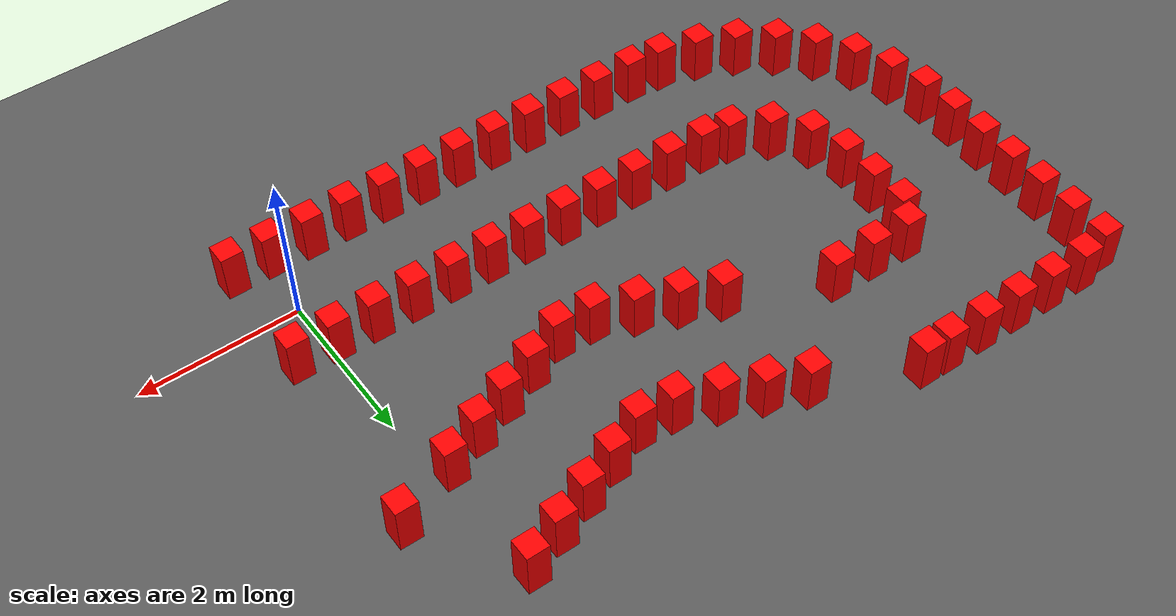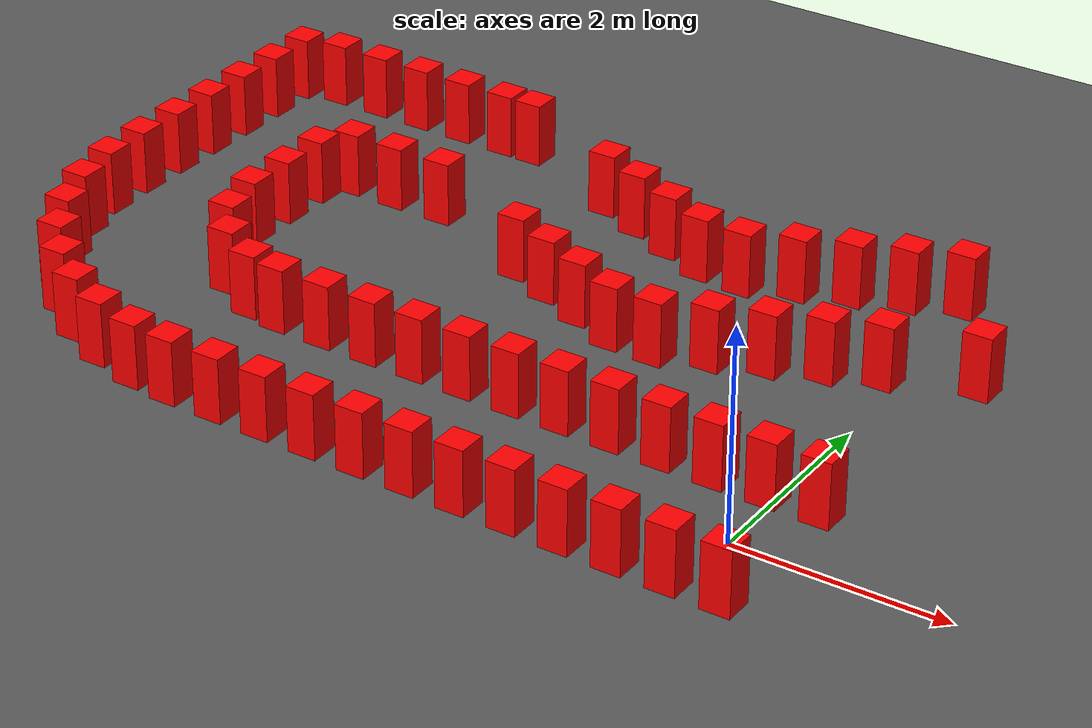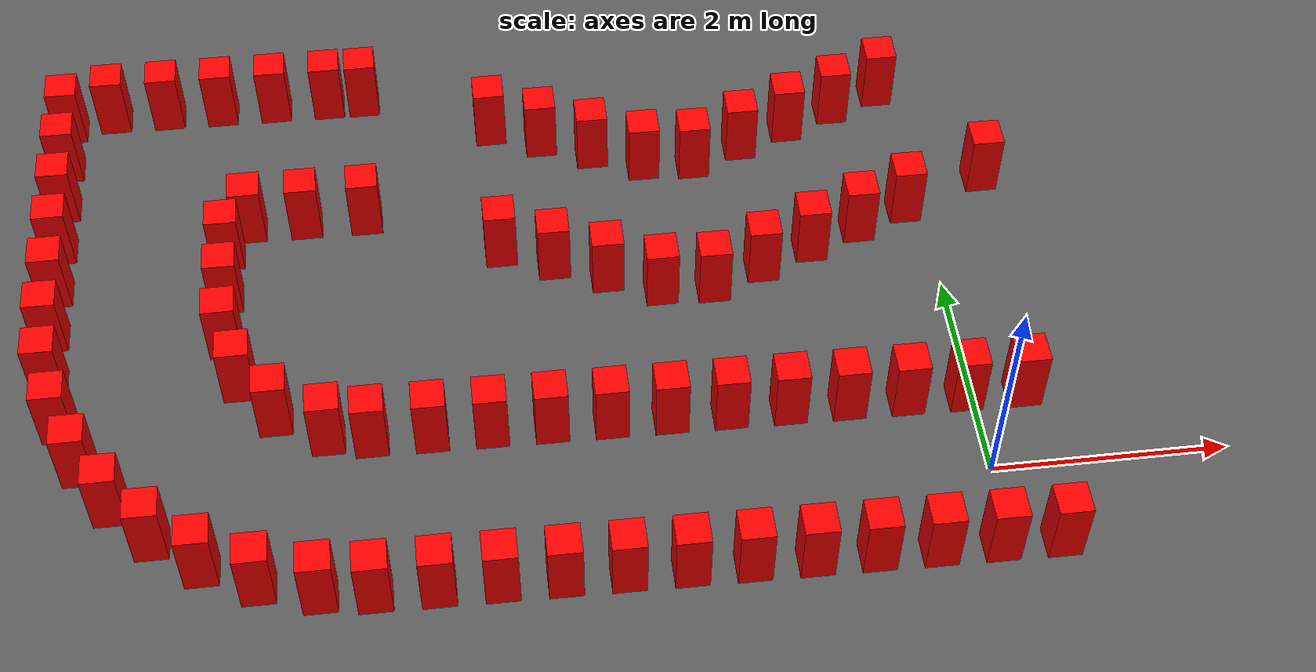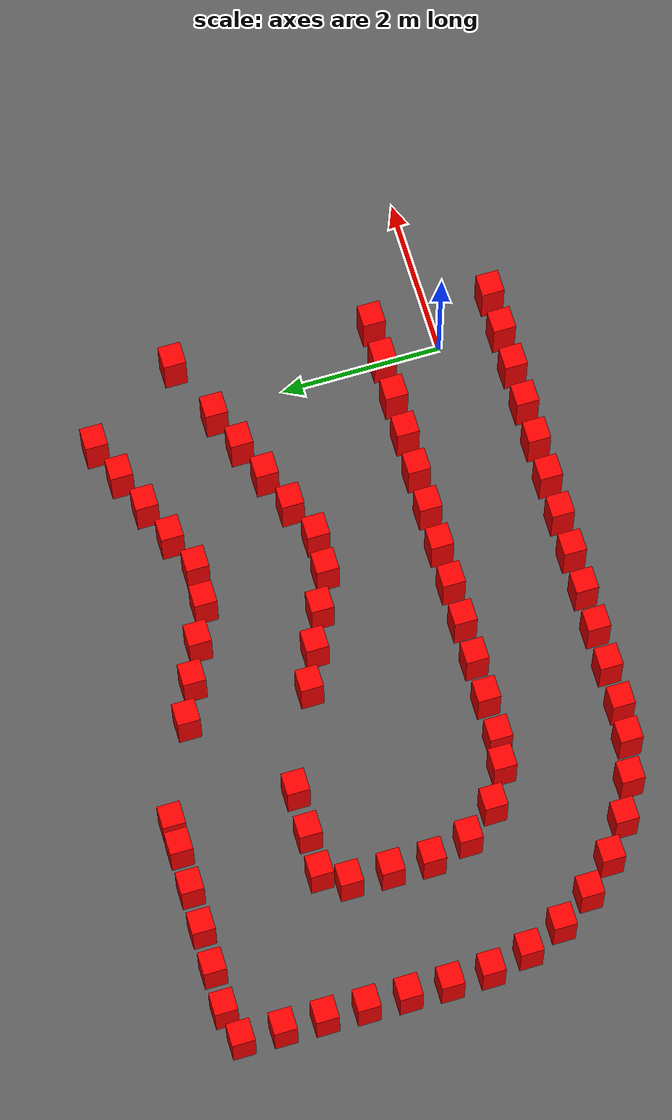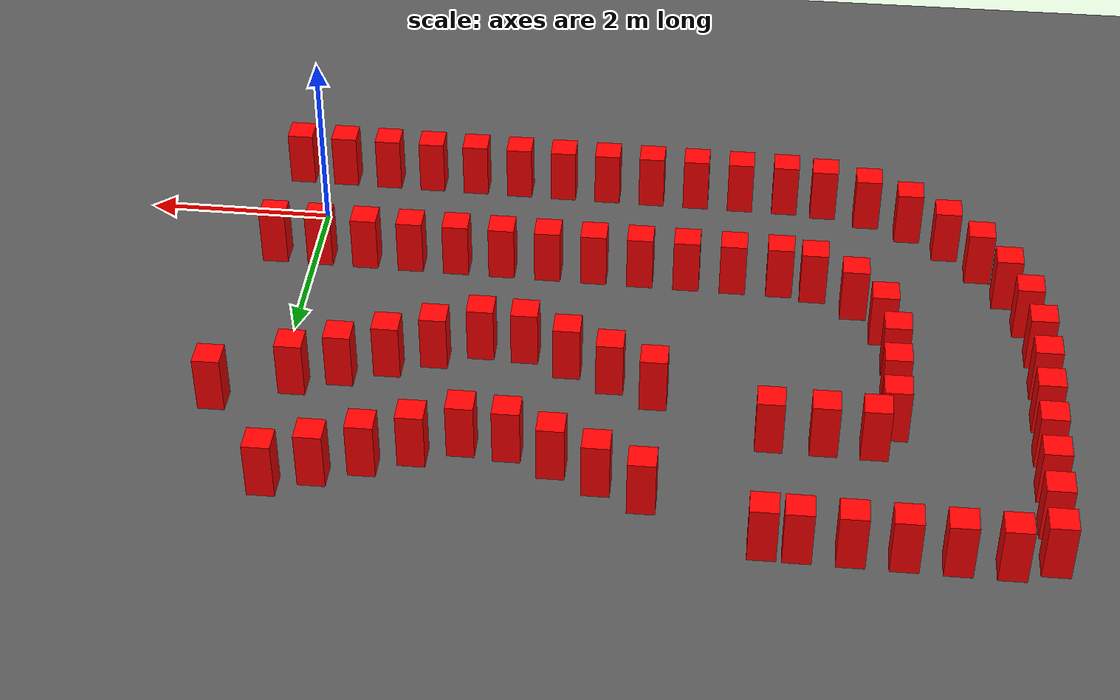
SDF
<sdf version="1.6">
 <world name="prototype">
  <model name="ground">
   <static>true</static>
   <pose>0 0 -0.05 0 0 0</pose>
   <link name="body">
    <visual name="visual">
     <geometry><box><size>200 200 0.1</size></box></geometry>
     <material><ambient>.35 .35 .35 1</ambient><diffuse>.35 .35 .35 1</diffuse></material>
    </visual>
    <collision name="collision"><geometry><box><size>200 200 0.1</size></box></geometry></collision>
   </link>
  </model>
  <model name="cone_proxy_c0">
   <static>true</static>
   <pose>-5.1238 -0.6649 0.315 0 0 0</pose>
   <link name="body">
    <visual name="visual">
     <geometry><box><size>.28 .28 .63</size></box></geometry>
     <material><ambient>1 0 0 1</ambient><diffuse>1 0 0 1</diffuse></material>
    </visual>
    <collision name="collision"><geometry><box><size>.28 .28 .63</size></box></geometry></collision>
   </link>
  </model>
  <model name="cone_proxy_c1">
   <static>true</static>
   <pose>-4.6214 -0.6739 0.315 0 0 0</pose>
   <link name="body">
    <visual name="visual">
     <geometry><box><size>.28 .28 .63</size></box></geometry>
     <material><ambient>1 0 0 1</ambient><diffuse>1 0 0 1</diffuse></material>
    </visual>
    <collision name="collision"><geometry><box><size>.28 .28 .63</size></box></geometry></collision>
   </link>
  </model>
  <model name="cone_proxy_c2">
   <static>true</static>
   <pose>-4.1189 -0.6830 0.315 0 0 0</pose>
   <link name="body">
    <visual name="visual">
     <geometry><box><size>.28 .28 .63</size></box></geometry>
     <material><ambient>1 0 0 1</ambient><diffuse>1 0 0 1</diffuse></material>
    </visual>
    <collision name="collision"><geometry><box><size>.28 .28 .63</size></box></geometry></collision>
   </link>
  </model>
  <model name="cone_proxy_c3">
   <static>true</static>
   <pose>-3.6165 -0.6920 0.315 0 0 0</pose>
   <link name="body">
    <visual name="visual">
     <geometry><box><size>.28 .28 .63</size></box></geometry>
     <material><ambient>1 0 0 1</ambient><diffuse>1 0 0 1</diffuse></material>
    </visual>
    <collision name="collision"><geometry><box><size>.28 .28 .63</size></box></geometry></collision>
   </link>
  </model>
  <model name="cone_proxy_c4">
   <static>true</static>
   <pose>-3.1141 -0.7011 0.315 0 0 0</pose>
   <link name="body">
    <visual name="visual">
     <geometry><box><size>.28 .28 .63</size></box></geometry>
     <material><ambient>1 0 0 1</ambient><diffuse>1 0 0 1</diffuse></material>
    </visual>
    <collision name="collision"><geometry><box><size>.28 .28 .63</size></box></geometry></collision>
   </link>
  </model>
  <model name="cone_proxy_c5">
   <static>true</static>
   <pose>-2.6118 -0.7101 0.315 0 0 0</pose>
   <link name="body">
    <visual name="visual">
     <geometry><box><size>.28 .28 .63</size></box></geometry>
     <material><ambient>1 0 0 1</ambient><diffuse>1 0 0 1</diffuse></material>
    </visual>
    <collision name="collision"><geometry><box><size>.28 .28 .63</size></box></geometry></collision>
   </link>
  </model>
  <model name="cone_proxy_c6">
   <static>true</static>
   <pose>-2.1094 -0.7192 0.315 0 0 0</pose>
   <link name="body">
    <visual name="visual">
     <geometry><box><size>.28 .28 .63</size></box></geometry>
     <material><ambient>1 0 0 1</ambient><diffuse>1 0 0 1</diffuse></material>
    </visual>
    <collision name="collision"><geometry><box><size>.28 .28 .63</size></box></geometry></collision>
   </link>
  </model>
  <model name="cone_proxy_c7">
   <static>true</static>
   <pose>-1.6069 -0.7282 0.315 0 0 0</pose>
   <link name="body">
    <visual name="visual">
     <geometry><box><size>.28 .28 .63</size></box></geometry>
     <material><ambient>1 0 0 1</ambient><diffuse>1 0 0 1</diffuse></material>
    </visual>
    <collision name="collision"><geometry><box><size>.28 .28 .63</size></box></geometry></collision>
   </link>
  </model>
  <model name="cone_proxy_c8">
   <static>true</static>
   <pose>-1.1045 -0.7373 0.315 0 0 0</pose>
   <link name="body">
    <visual name="visual">
     <geometry><box><size>.28 .28 .63</size></box></geometry>
     <material><ambient>1 0 0 1</ambient><diffuse>1 0 0 1</diffuse></material>
    </visual>
    <collision name="collision"><geometry><box><size>.28 .28 .63</size></box></geometry></collision>
   </link>
  </model>
  <model name="cone_proxy_c9">
   <static>true</static>
   <pose>-0.6021 -0.7463 0.315 0 0 0</pose>
   <link name="body">
    <visual name="visual">
     <geometry><box><size>.28 .28 .63</size></box></geometry>
     <material><ambient>1 0 0 1</ambient><diffuse>1 0 0 1</diffuse></material>
    </visual>
    <collision name="collision"><geometry><box><size>.28 .28 .63</size></box></geometry></collision>
   </link>
  </model>
  <model name="cone_proxy_c10">
   <static>true</static>
   <pose>-0.0998 -0.7554 0.315 0 0 0</pose>
   <link name="body">
    <visual name="visual">
     <geometry><box><size>.28 .28 .63</size></box></geometry>
     <material><ambient>1 0 0 1</ambient><diffuse>1 0 0 1</diffuse></material>
    </visual>
    <collision name="collision"><geometry><box><size>.28 .28 .63</size></box></geometry></collision>
   </link>
  </model>
  <model name="cone_proxy_c11">
   <static>true</static>
   <pose>0.4026 -0.7644 0.315 0 0 0</pose>
   <link name="body">
    <visual name="visual">
     <geometry><box><size>.28 .28 .63</size></box></geometry>
     <material><ambient>1 0 0 1</ambient><diffuse>1 0 0 1</diffuse></material>
    </visual>
    <collision name="collision"><geometry><box><size>.28 .28 .63</size></box></geometry></collision>
   </link>
  </model>
  <model name="cone_proxy_c53">
   <static>true</static>
   <pose>-5.0248 4.8301 0.315 0 0 0</pose>
   <link name="body">
    <visual name="visual">
     <geometry><box><size>.28 .28 .63</size></box></geometry>
     <material><ambient>1 0 0 1</ambient><diffuse>1 0 0 1</diffuse></material>
    </visual>
    <collision name="collision"><geometry><box><size>.28 .28 .63</size></box></geometry></collision>
   </link>
  </model>
  <model name="cone_proxy_c54">
   <static>true</static>
   <pose>-5.3560 4.8361 0.315 0 0 0</pose>
   <link name="body">
    <visual name="visual">
     <geometry><box><size>.28 .28 .63</size></box></geometry>
     <material><ambient>1 0 0 1</ambient><diffuse>1 0 0 1</diffuse></material>
    </visual>
    <collision name="collision"><geometry><box><size>.28 .28 .63</size></box></geometry></collision>
   </link>
  </model>
  <model name="cone_proxy_c55">
   <static>true</static>
   <pose>-5.8584 4.8452 0.315 0 0 0</pose>
   <link name="body">
    <visual name="visual">
     <geometry><box><size>.28 .28 .63</size></box></geometry>
     <material><ambient>1 0 0 1</ambient><diffuse>1 0 0 1</diffuse></material>
    </visual>
    <collision name="collision"><geometry><box><size>.28 .28 .63</size></box></geometry></collision>
   </link>
  </model>
  <model name="cone_proxy_c56">
   <static>true</static>
   <pose>-6.3608 4.8542 0.315 0 0 0</pose>
   <link name="body">
    <visual name="visual">
     <geometry><box><size>.28 .28 .63</size></box></geometry>
     <material><ambient>1 0 0 1</ambient><diffuse>1 0 0 1</diffuse></material>
    </visual>
    <collision name="collision"><geometry><box><size>.28 .28 .63</size></box></geometry></collision>
   </link>
  </model>
  <model name="cone_proxy_c57">
   <static>true</static>
   <pose>-6.8633 4.8633 0.315 0 0 0</pose>
   <link name="body">
    <visual name="visual">
     <geometry><box><size>.28 .28 .63</size></box></geometry>
     <material><ambient>1 0 0 1</ambient><diffuse>1 0 0 1</diffuse></material>
    </visual>
    <collision name="collision"><geometry><box><size>.28 .28 .63</size></box></geometry></collision>
   </link>
  </model>
  <model name="cone_proxy_c58">
   <static>true</static>
   <pose>-7.3657 4.8723 0.315 0 0 0</pose>
   <link name="body">
    <visual name="visual">
     <geometry><box><size>.28 .28 .63</size></box></geometry>
     <material><ambient>1 0 0 1</ambient><diffuse>1 0 0 1</diffuse></material>
    </visual>
    <collision name="collision"><geometry><box><size>.28 .28 .63</size></box></geometry></collision>
   </link>
  </model>
  <model name="cone_proxy_c59">
   <static>true</static>
   <pose>-7.7739 4.7838 0.315 0 0 0</pose>
   <link name="body">
    <visual name="visual">
     <geometry><box><size>.28 .28 .63</size></box></geometry>
     <material><ambient>1 0 0 1</ambient><diffuse>1 0 0 1</diffuse></material>
    </visual>
    <collision name="collision"><geometry><box><size>.28 .28 .63</size></box></geometry></collision>
   </link>
  </model>
  <model name="cone_proxy_c60">
   <static>true</static>
   <pose>-7.7830 4.2815 0.315 0 0 0</pose>
   <link name="body">
    <visual name="visual">
     <geometry><box><size>.28 .28 .63</size></box></geometry>
     <material><ambient>1 0 0 1</ambient><diffuse>1 0 0 1</diffuse></material>
    </visual>
    <collision name="collision"><geometry><box><size>.28 .28 .63</size></box></geometry></collision>
   </link>
  </model>
  <model name="cone_proxy_c61">
   <static>true</static>
   <pose>-7.7921 3.7790 0.315 0 0 0</pose>
   <link name="body">
    <visual name="visual">
     <geometry><box><size>.28 .28 .63</size></box></geometry>
     <material><ambient>1 0 0 1</ambient><diffuse>1 0 0 1</diffuse></material>
    </visual>
    <collision name="collision"><geometry><box><size>.28 .28 .63</size></box></geometry></collision>
   </link>
  </model>
  <model name="cone_proxy_c62">
   <static>true</static>
   <pose>-7.8011 3.2766 0.315 0 0 0</pose>
   <link name="body">
    <visual name="visual">
     <geometry><box><size>.28 .28 .63</size></box></geometry>
     <material><ambient>1 0 0 1</ambient><diffuse>1 0 0 1</diffuse></material>
    </visual>
    <collision name="collision"><geometry><box><size>.28 .28 .63</size></box></geometry></collision>
   </link>
  </model>
  <model name="cone_proxy_c63">
   <static>true</static>
   <pose>-7.8102 2.7742 0.315 0 0 0</pose>
   <link name="body">
    <visual name="visual">
     <geometry><box><size>.28 .28 .63</size></box></geometry>
     <material><ambient>1 0 0 1</ambient><diffuse>1 0 0 1</diffuse></material>
    </visual>
    <collision name="collision"><geometry><box><size>.28 .28 .63</size></box></geometry></collision>
   </link>
  </model>
  <model name="cone_proxy_c64">
   <static>true</static>
   <pose>-7.8192 2.2718 0.315 0 0 0</pose>
   <link name="body">
    <visual name="visual">
     <geometry><box><size>.28 .28 .63</size></box></geometry>
     <material><ambient>1 0 0 1</ambient><diffuse>1 0 0 1</diffuse></material>
    </visual>
    <collision name="collision"><geometry><box><size>.28 .28 .63</size></box></geometry></collision>
   </link>
  </model>
  <model name="cone_proxy_c65">
   <static>true</static>
   <pose>-7.8040 1.7700 0.315 0 0 0</pose>
   <link name="body">
    <visual name="visual">
     <geometry><box><size>.28 .28 .63</size></box></geometry>
     <material><ambient>1 0 0 1</ambient><diffuse>1 0 0 1</diffuse></material>
    </visual>
    <collision name="collision"><geometry><box><size>.28 .28 .63</size></box></geometry></collision>
   </link>
  </model>
  <model name="cone_proxy_c66">
   <static>true</static>
   <pose>-7.7020 1.2788 0.315 0 0 0</pose>
   <link name="body">
    <visual name="visual">
     <geometry><box><size>.28 .28 .63</size></box></geometry>
     <material><ambient>1 0 0 1</ambient><diffuse>1 0 0 1</diffuse></material>
    </visual>
    <collision name="collision"><geometry><box><size>.28 .28 .63</size></box></geometry></collision>
   </link>
  </model>
  <model name="cone_proxy_c67">
   <static>true</static>
   <pose>-7.5117 0.8145 0.315 0 0 0</pose>
   <link name="body">
    <visual name="visual">
     <geometry><box><size>.28 .28 .63</size></box></geometry>
     <material><ambient>1 0 0 1</ambient><diffuse>1 0 0 1</diffuse></material>
    </visual>
    <collision name="collision"><geometry><box><size>.28 .28 .63</size></box></geometry></collision>
   </link>
  </model>
  <model name="cone_proxy_c68">
   <static>true</static>
   <pose>-7.2404 0.3924 0.315 0 0 0</pose>
   <link name="body">
    <visual name="visual">
     <geometry><box><size>.28 .28 .63</size></box></geometry>
     <material><ambient>1 0 0 1</ambient><diffuse>1 0 0 1</diffuse></material>
    </visual>
    <collision name="collision"><geometry><box><size>.28 .28 .63</size></box></geometry></collision>
   </link>
  </model>
  <model name="cone_proxy_c69">
   <static>true</static>
   <pose>-6.8969 0.0266 0.315 0 0 0</pose>
   <link name="body">
    <visual name="visual">
     <geometry><box><size>.28 .28 .63</size></box></geometry>
     <material><ambient>1 0 0 1</ambient><diffuse>1 0 0 1</diffuse></material>
    </visual>
    <collision name="collision"><geometry><box><size>.28 .28 .63</size></box></geometry></collision>
   </link>
  </model>
  <model name="cone_proxy_c70">
   <static>true</static>
   <pose>-6.4928 -0.2708 0.315 0 0 0</pose>
   <link name="body">
    <visual name="visual">
     <geometry><box><size>.28 .28 .63</size></box></geometry>
     <material><ambient>1 0 0 1</ambient><diffuse>1 0 0 1</diffuse></material>
    </visual>
    <collision name="collision"><geometry><box><size>.28 .28 .63</size></box></geometry></collision>
   </link>
  </model>
  <model name="cone_proxy_c71">
   <static>true</static>
   <pose>-6.0411 -0.4893 0.315 0 0 0</pose>
   <link name="body">
    <visual name="visual">
     <geometry><box><size>.28 .28 .63</size></box></geometry>
     <material><ambient>1 0 0 1</ambient><diffuse>1 0 0 1</diffuse></material>
    </visual>
    <collision name="collision"><geometry><box><size>.28 .28 .63</size></box></geometry></collision>
   </link>
  </model>
  <model name="cone_proxy_c72">
   <static>true</static>
   <pose>-5.5573 -0.6221 0.315 0 0 0</pose>
   <link name="body">
    <visual name="visual">
     <geometry><box><size>.28 .28 .63</size></box></geometry>
     <material><ambient>1 0 0 1</ambient><diffuse>1 0 0 1</diffuse></material>
    </visual>
    <collision name="collision"><geometry><box><size>.28 .28 .63</size></box></geometry></collision>
   </link>
  </model>
  <model name="cone_proxy_c73">
   <static>true</static>
   <pose>-5.0966 0.8423 0.315 0 0 0</pose>
   <link name="body">
    <visual name="visual">
     <geometry><box><size>.28 .28 .63</size></box></geometry>
     <material><ambient>1 0 0 1</ambient><diffuse>1 0 0 1</diffuse></material>
    </visual>
    <collision name="collision"><geometry><box><size>.28 .28 .63</size></box></geometry></collision>
   </link>
  </model>
  <model name="cone_proxy_c74">
   <static>true</static>
   <pose>-4.5942 0.8332 0.315 0 0 0</pose>
   <link name="body">
    <visual name="visual">
     <geometry><box><size>.28 .28 .63</size></box></geometry>
     <material><ambient>1 0 0 1</ambient><diffuse>1 0 0 1</diffuse></material>
    </visual>
    <collision name="collision"><geometry><box><size>.28 .28 .63</size></box></geometry></collision>
   </link>
  </model>
  <model name="cone_proxy_c75">
   <static>true</static>
   <pose>-4.0918 0.8242 0.315 0 0 0</pose>
   <link name="body">
    <visual name="visual">
     <geometry><box><size>.28 .28 .63</size></box></geometry>
     <material><ambient>1 0 0 1</ambient><diffuse>1 0 0 1</diffuse></material>
    </visual>
    <collision name="collision"><geometry><box><size>.28 .28 .63</size></box></geometry></collision>
   </link>
  </model>
  <model name="cone_proxy_c76">
   <static>true</static>
   <pose>-3.5894 0.8151 0.315 0 0 0</pose>
   <link name="body">
    <visual name="visual">
     <geometry><box><size>.28 .28 .63</size></box></geometry>
     <material><ambient>1 0 0 1</ambient><diffuse>1 0 0 1</diffuse></material>
    </visual>
    <collision name="collision"><geometry><box><size>.28 .28 .63</size></box></geometry></collision>
   </link>
  </model>
  <model name="cone_proxy_c77">
   <static>true</static>
   <pose>-3.0869 0.8061 0.315 0 0 0</pose>
   <link name="body">
    <visual name="visual">
     <geometry><box><size>.28 .28 .63</size></box></geometry>
     <material><ambient>1 0 0 1</ambient><diffuse>1 0 0 1</diffuse></material>
    </visual>
    <collision name="collision"><geometry><box><size>.28 .28 .63</size></box></geometry></collision>
   </link>
  </model>
  <model name="cone_proxy_c78">
   <static>true</static>
   <pose>-2.5846 0.7970 0.315 0 0 0</pose>
   <link name="body">
    <visual name="visual">
     <geometry><box><size>.28 .28 .63</size></box></geometry>
     <material><ambient>1 0 0 1</ambient><diffuse>1 0 0 1</diffuse></material>
    </visual>
    <collision name="collision"><geometry><box><size>.28 .28 .63</size></box></geometry></collision>
   </link>
  </model>
  <model name="cone_proxy_c79">
   <static>true</static>
   <pose>-2.0822 0.7880 0.315 0 0 0</pose>
   <link name="body">
    <visual name="visual">
     <geometry><box><size>.28 .28 .63</size></box></geometry>
     <material><ambient>1 0 0 1</ambient><diffuse>1 0 0 1</diffuse></material>
    </visual>
    <collision name="collision"><geometry><box><size>.28 .28 .63</size></box></geometry></collision>
   </link>
  </model>
  <model name="cone_proxy_c80">
   <static>true</static>
   <pose>-1.5798 0.7789 0.315 0 0 0</pose>
   <link name="body">
    <visual name="visual">
     <geometry><box><size>.28 .28 .63</size></box></geometry>
     <material><ambient>1 0 0 1</ambient><diffuse>1 0 0 1</diffuse></material>
    </visual>
    <collision name="collision"><geometry><box><size>.28 .28 .63</size></box></geometry></collision>
   </link>
  </model>
  <model name="cone_proxy_c81">
   <static>true</static>
   <pose>-1.0774 0.7699 0.315 0 0 0</pose>
   <link name="body">
    <visual name="visual">
     <geometry><box><size>.28 .28 .63</size></box></geometry>
     <material><ambient>1 0 0 1</ambient><diffuse>1 0 0 1</diffuse></material>
    </visual>
    <collision name="collision"><geometry><box><size>.28 .28 .63</size></box></geometry></collision>
   </link>
  </model>
  <model name="cone_proxy_c82">
   <static>true</static>
   <pose>-0.5750 0.7608 0.315 0 0 0</pose>
   <link name="body">
    <visual name="visual">
     <geometry><box><size>.28 .28 .63</size></box></geometry>
     <material><ambient>1 0 0 1</ambient><diffuse>1 0 0 1</diffuse></material>
    </visual>
    <collision name="collision"><geometry><box><size>.28 .28 .63</size></box></geometry></collision>
   </link>
  </model>
  <model name="cone_proxy_c83">
   <static>true</static>
   <pose>-0.0726 0.7518 0.315 0 0 0</pose>
   <link name="body">
    <visual name="visual">
     <geometry><box><size>.28 .28 .63</size></box></geometry>
     <material><ambient>1 0 0 1</ambient><diffuse>1 0 0 1</diffuse></material>
    </visual>
    <collision name="collision"><geometry><box><size>.28 .28 .63</size></box></geometry></collision>
   </link>
  </model>
  <model name="cone_proxy_c84">
   <static>true</static>
   <pose>0.4298 0.7427 0.315 0 0 0</pose>
   <link name="body">
    <visual name="visual">
     <geometry><box><size>.28 .28 .63</size></box></geometry>
     <material><ambient>1 0 0 1</ambient><diffuse>1 0 0 1</diffuse></material>
    </visual>
    <collision name="collision"><geometry><box><size>.28 .28 .63</size></box></geometry></collision>
   </link>
  </model>
  <model name="cone_proxy_c116">
   <static>true</static>
   <pose>0.6001 3.2211 0.315 0 0 0</pose>
   <link name="body">
    <visual name="visual">
     <geometry><box><size>.28 .28 .63</size></box></geometry>
     <material><ambient>1 0 0 1</ambient><diffuse>1 0 0 1</diffuse></material>
    </visual>
    <collision name="collision"><geometry><box><size>.28 .28 .63</size></box></geometry></collision>
   </link>
  </model>
  <model name="cone_proxy_c117">
   <static>true</static>
   <pose>-5.0519 3.3229 0.315 0 0 0</pose>
   <link name="body">
    <visual name="visual">
     <geometry><box><size>.28 .28 .63</size></box></geometry>
     <material><ambient>1 0 0 1</ambient><diffuse>1 0 0 1</diffuse></material>
    </visual>
    <collision name="collision"><geometry><box><size>.28 .28 .63</size></box></geometry></collision>
   </link>
  </model>
  <model name="cone_proxy_c118">
   <static>true</static>
   <pose>-5.5956 3.3327 0.315 0 0 0</pose>
   <link name="body">
    <visual name="visual">
     <geometry><box><size>.28 .28 .63</size></box></geometry>
     <material><ambient>1 0 0 1</ambient><diffuse>1 0 0 1</diffuse></material>
    </visual>
    <collision name="collision"><geometry><box><size>.28 .28 .63</size></box></geometry></collision>
   </link>
  </model>
  <model name="cone_proxy_c119">
   <static>true</static>
   <pose>-6.0981 3.3417 0.315 0 0 0</pose>
   <link name="body">
    <visual name="visual">
     <geometry><box><size>.28 .28 .63</size></box></geometry>
     <material><ambient>1 0 0 1</ambient><diffuse>1 0 0 1</diffuse></material>
    </visual>
    <collision name="collision"><geometry><box><size>.28 .28 .63</size></box></geometry></collision>
   </link>
  </model>
  <model name="cone_proxy_c120">
   <static>true</static>
   <pose>-6.2978 3.0370 0.315 0 0 0</pose>
   <link name="body">
    <visual name="visual">
     <geometry><box><size>.28 .28 .63</size></box></geometry>
     <material><ambient>1 0 0 1</ambient><diffuse>1 0 0 1</diffuse></material>
    </visual>
    <collision name="collision"><geometry><box><size>.28 .28 .63</size></box></geometry></collision>
   </link>
  </model>
  <model name="cone_proxy_c121">
   <static>true</static>
   <pose>-6.3068 2.5346 0.315 0 0 0</pose>
   <link name="body">
    <visual name="visual">
     <geometry><box><size>.28 .28 .63</size></box></geometry>
     <material><ambient>1 0 0 1</ambient><diffuse>1 0 0 1</diffuse></material>
    </visual>
    <collision name="collision"><geometry><box><size>.28 .28 .63</size></box></geometry></collision>
   </link>
  </model>
  <model name="cone_proxy_c122">
   <static>true</static>
   <pose>-6.3136 2.0322 0.315 0 0 0</pose>
   <link name="body">
    <visual name="visual">
     <geometry><box><size>.28 .28 .63</size></box></geometry>
     <material><ambient>1 0 0 1</ambient><diffuse>1 0 0 1</diffuse></material>
    </visual>
    <collision name="collision"><geometry><box><size>.28 .28 .63</size></box></geometry></collision>
   </link>
  </model>
  <model name="cone_proxy_c123">
   <static>true</static>
   <pose>-6.1934 1.5479 0.315 0 0 0</pose>
   <link name="body">
    <visual name="visual">
     <geometry><box><size>.28 .28 .63</size></box></geometry>
     <material><ambient>1 0 0 1</ambient><diffuse>1 0 0 1</diffuse></material>
    </visual>
    <collision name="collision"><geometry><box><size>.28 .28 .63</size></box></geometry></collision>
   </link>
  </model>
  <model name="cone_proxy_c124">
   <static>true</static>
   <pose>-5.8921 1.1501 0.315 0 0 0</pose>
   <link name="body">
    <visual name="visual">
     <geometry><box><size>.28 .28 .63</size></box></geometry>
     <material><ambient>1 0 0 1</ambient><diffuse>1 0 0 1</diffuse></material>
    </visual>
    <collision name="collision"><geometry><box><size>.28 .28 .63</size></box></geometry></collision>
   </link>
  </model>
  <model name="cone_proxy_c125">
   <static>true</static>
   <pose>-5.4584 0.9033 0.315 0 0 0</pose>
   <link name="body">
    <visual name="visual">
     <geometry><box><size>.28 .28 .63</size></box></geometry>
     <material><ambient>1 0 0 1</ambient><diffuse>1 0 0 1</diffuse></material>
    </visual>
    <collision name="collision"><geometry><box><size>.28 .28 .63</size></box></geometry></collision>
   </link>
  </model>
  <model name="cone_proxy_c126">
   <static>true</static>
   <pose>-0.1577 4.4177 0.315 0 0 0</pose>
   <link name="body">
    <visual name="visual">
     <geometry><box><size>.28 .28 .63</size></box></geometry>
     <material><ambient>1 0 0 1</ambient><diffuse>1 0 0 1</diffuse></material>
    </visual>
    <collision name="collision"><geometry><box><size>.28 .28 .63</size></box></geometry></collision>
   </link>
  </model>
  <model name="cone_proxy_c127">
   <static>true</static>
   <pose>-0.6226 4.2337 0.315 0 0 0</pose>
   <link name="body">
    <visual name="visual">
     <geometry><box><size>.28 .28 .63</size></box></geometry>
     <material><ambient>1 0 0 1</ambient><diffuse>1 0 0 1</diffuse></material>
    </visual>
    <collision name="collision"><geometry><box><size>.28 .28 .63</size></box></geometry></collision>
   </link>
  </model>
  <model name="cone_proxy_c128">
   <static>true</static>
   <pose>-1.0875 4.0498 0.315 0 0 0</pose>
   <link name="body">
    <visual name="visual">
     <geometry><box><size>.28 .28 .63</size></box></geometry>
     <material><ambient>1 0 0 1</ambient><diffuse>1 0 0 1</diffuse></material>
    </visual>
    <collision name="collision"><geometry><box><size>.28 .28 .63</size></box></geometry></collision>
   </link>
  </model>
  <model name="cone_proxy_c129">
   <static>true</static>
   <pose>-1.5525 3.8658 0.315 0 0 0</pose>
   <link name="body">
    <visual name="visual">
     <geometry><box><size>.28 .28 .63</size></box></geometry>
     <material><ambient>1 0 0 1</ambient><diffuse>1 0 0 1</diffuse></material>
    </visual>
    <collision name="collision"><geometry><box><size>.28 .28 .63</size></box></geometry></collision>
   </link>
  </model>
  <model name="cone_proxy_c130">
   <static>true</static>
   <pose>-2.0174 3.6819 0.315 0 0 0</pose>
   <link name="body">
    <visual name="visual">
     <geometry><box><size>.28 .28 .63</size></box></geometry>
     <material><ambient>1 0 0 1</ambient><diffuse>1 0 0 1</diffuse></material>
    </visual>
    <collision name="collision"><geometry><box><size>.28 .28 .63</size></box></geometry></collision>
   </link>
  </model>
  <model name="cone_proxy_c131">
   <static>true</static>
   <pose>-2.4784 3.7149 0.315 0 0 0</pose>
   <link name="body">
    <visual name="visual">
     <geometry><box><size>.28 .28 .63</size></box></geometry>
     <material><ambient>1 0 0 1</ambient><diffuse>1 0 0 1</diffuse></material>
    </visual>
    <collision name="collision"><geometry><box><size>.28 .28 .63</size></box></geometry></collision>
   </link>
  </model>
  <model name="cone_proxy_c132">
   <static>true</static>
   <pose>-2.9364 3.9155 0.315 0 0 0</pose>
   <link name="body">
    <visual name="visual">
     <geometry><box><size>.28 .28 .63</size></box></geometry>
     <material><ambient>1 0 0 1</ambient><diffuse>1 0 0 1</diffuse></material>
    </visual>
    <collision name="collision"><geometry><box><size>.28 .28 .63</size></box></geometry></collision>
   </link>
  </model>
  <model name="cone_proxy_c133">
   <static>true</static>
   <pose>-3.3944 4.1161 0.315 0 0 0</pose>
   <link name="body">
    <visual name="visual">
     <geometry><box><size>.28 .28 .63</size></box></geometry>
     <material><ambient>1 0 0 1</ambient><diffuse>1 0 0 1</diffuse></material>
    </visual>
    <collision name="collision"><geometry><box><size>.28 .28 .63</size></box></geometry></collision>
   </link>
  </model>
  <model name="cone_proxy_c134">
   <static>true</static>
   <pose>-3.8524 4.3167 0.315 0 0 0</pose>
   <link name="body">
    <visual name="visual">
     <geometry><box><size>.28 .28 .63</size></box></geometry>
     <material><ambient>1 0 0 1</ambient><diffuse>1 0 0 1</diffuse></material>
    </visual>
    <collision name="collision"><geometry><box><size>.28 .28 .63</size></box></geometry></collision>
   </link>
  </model>
  <model name="cone_proxy_c135">
   <static>true</static>
   <pose>-0.1707 2.9161 0.315 0 0 0</pose>
   <link name="body">
    <visual name="visual">
     <geometry><box><size>.28 .28 .63</size></box></geometry>
     <material><ambient>1 0 0 1</ambient><diffuse>1 0 0 1</diffuse></material>
    </visual>
    <collision name="collision"><geometry><box><size>.28 .28 .63</size></box></geometry></collision>
   </link>
  </model>
  <model name="cone_proxy_c136">
   <static>true</static>
   <pose>-0.6356 2.7322 0.315 0 0 0</pose>
   <link name="body">
    <visual name="visual">
     <geometry><box><size>.28 .28 .63</size></box></geometry>
     <material><ambient>1 0 0 1</ambient><diffuse>1 0 0 1</diffuse></material>
    </visual>
    <collision name="collision"><geometry><box><size>.28 .28 .63</size></box></geometry></collision>
   </link>
  </model>
  <model name="cone_proxy_c137">
   <static>true</static>
   <pose>-1.1005 2.5482 0.315 0 0 0</pose>
   <link name="body">
    <visual name="visual">
     <geometry><box><size>.28 .28 .63</size></box></geometry>
     <material><ambient>1 0 0 1</ambient><diffuse>1 0 0 1</diffuse></material>
    </visual>
    <collision name="collision"><geometry><box><size>.28 .28 .63</size></box></geometry></collision>
   </link>
  </model>
  <model name="cone_proxy_c138">
   <static>true</static>
   <pose>-1.5655 2.3642 0.315 0 0 0</pose>
   <link name="body">
    <visual name="visual">
     <geometry><box><size>.28 .28 .63</size></box></geometry>
     <material><ambient>1 0 0 1</ambient><diffuse>1 0 0 1</diffuse></material>
    </visual>
    <collision name="collision"><geometry><box><size>.28 .28 .63</size></box></geometry></collision>
   </link>
  </model>
  <model name="cone_proxy_c139">
   <static>true</static>
   <pose>-2.0304 2.1803 0.315 0 0 0</pose>
   <link name="body">
    <visual name="visual">
     <geometry><box><size>.28 .28 .63</size></box></geometry>
     <material><ambient>1 0 0 1</ambient><diffuse>1 0 0 1</diffuse></material>
    </visual>
    <collision name="collision"><geometry><box><size>.28 .28 .63</size></box></geometry></collision>
   </link>
  </model>
  <model name="cone_proxy_c140">
   <static>true</static>
   <pose>-2.4916 2.2016 0.315 0 0 0</pose>
   <link name="body">
    <visual name="visual">
     <geometry><box><size>.28 .28 .63</size></box></geometry>
     <material><ambient>1 0 0 1</ambient><diffuse>1 0 0 1</diffuse></material>
    </visual>
    <collision name="collision"><geometry><box><size>.28 .28 .63</size></box></geometry></collision>
   </link>
  </model>
  <model name="cone_proxy_c141">
   <static>true</static>
   <pose>-2.9496 2.4022 0.315 0 0 0</pose>
   <link name="body">
    <visual name="visual">
     <geometry><box><size>.28 .28 .63</size></box></geometry>
     <material><ambient>1 0 0 1</ambient><diffuse>1 0 0 1</diffuse></material>
    </visual>
    <collision name="collision"><geometry><box><size>.28 .28 .63</size></box></geometry></collision>
   </link>
  </model>
  <model name="cone_proxy_c142">
   <static>true</static>
   <pose>-3.4076 2.6027 0.315 0 0 0</pose>
   <link name="body">
    <visual name="visual">
     <geometry><box><size>.28 .28 .63</size></box></geometry>
     <material><ambient>1 0 0 1</ambient><diffuse>1 0 0 1</diffuse></material>
    </visual>
    <collision name="collision"><geometry><box><size>.28 .28 .63</size></box></geometry></collision>
   </link>
  </model>
  <model name="cone_proxy_c143">
   <static>true</static>
   <pose>-3.8656 2.8034 0.315 0 0 0</pose>
   <link name="body">
    <visual name="visual">
     <geometry><box><size>.28 .28 .63</size></box></geometry>
     <material><ambient>1 0 0 1</ambient><diffuse>1 0 0 1</diffuse></material>
    </visual>
    <collision name="collision"><geometry><box><size>.28 .28 .63</size></box></geometry></collision>
   </link>
  </model>
 </world>
</sdf>
